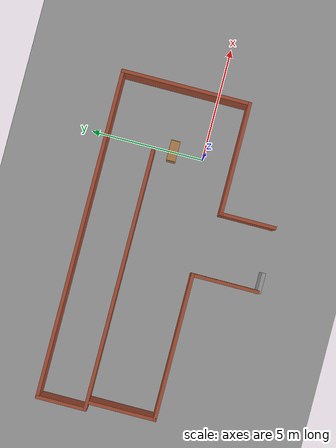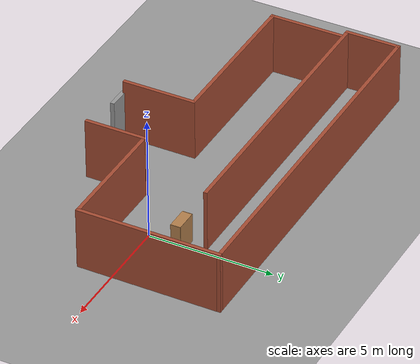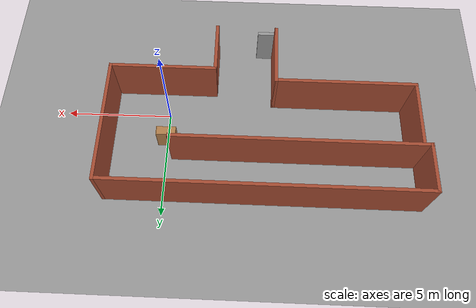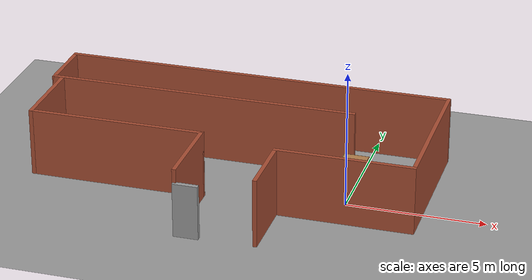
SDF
<sdf version="1.6">
 <world name="default">
  <light name="sun" type="directional">
   <pose>0 0 10 0 -0 0</pose>
   <diffuse>0.8 0.8 0.8 1</diffuse>
   <specular>0.2 0.2 0.2 1</specular>
   <attenuation>
    <range>1000</range>
    <constant>0.9</constant>
    <linear>0.01</linear>
    <quadratic>0.001</quadratic>
   </attenuation>
   <direction>0.5 0.1 -0.9</direction>
  </light>
  <scene><ambient>0.4 0.4 0.4 1</ambient><background>0.7 0.7 0.7 1</background><shadows>1</shadows></scene>
  <physics name="default_physics" default="0" type="ode">
   <max_step_size>0.01</max_step_size>
   <real_time_factor>1</real_time_factor>
   <real_time_update_rate>100</real_time_update_rate>
  </physics>
  <model name="bookshelf">
   <static>1</static>
   <link name="link">
    <inertial><mass>1</mass></inertial>
    <collision name="back">
     <pose>0 0.005 0.6 0 -0 0</pose>
     <geometry><box><size>0.9 0.01 1.2</size></box></geometry>
    </collision>
    <visual name="visual1">
     <pose>0 0.005 0.6 0 -0 0</pose>
     <geometry><box><size>0.9 0.01 1.2</size></box></geometry>
     <material>
      <script><uri>file://media/materials/scripts/gazebo.material</uri><name>Gazebo/Wood</name></script>
     </material>
    </visual>
    <collision name="left_side">
     <pose>0.45 -0.195 0.6 0 -0 0</pose>
     <geometry><box><size>0.02 0.4 1.2</size></box></geometry>
    </collision>
    <visual name="visual2">
     <pose>0.45 -0.195 0.6 0 -0 0</pose>
     <geometry><box><size>0.02 0.4 1.2</size></box></geometry>
     <material>
      <script><uri>file://media/materials/scripts/gazebo.material</uri><name>Gazebo/Wood</name></script>
     </material>
    </visual>
    <collision name="right_side">
     <pose>-0.45 -0.195 0.6 0 -0 0</pose>
     <geometry><box><size>0.02 0.4 1.2</size></box></geometry>
    </collision>
    <visual name="visual3">
     <pose>-0.45 -0.195 0.6 0 -0 0</pose>
     <geometry><box><size>0.02 0.4 1.2</size></box></geometry>
     <material>
      <script><uri>file://media/materials/scripts/gazebo.material</uri><name>Gazebo/Wood</name></script>
     </material>
    </visual>
    <collision name="bottom">
     <pose>0 -0.195 0.03 0 -0 0</pose>
     <geometry><box><size>0.88 0.4 0.06</size></box></geometry>
    </collision>
    <visual name="visual4">
     <pose>0 -0.195 0.03 0 -0 0</pose>
     <geometry><box><size>0.88 0.4 0.06</size></box></geometry>
     <material>
      <script><uri>file://media/materials/scripts/gazebo.material</uri><name>Gazebo/Wood</name></script>
     </material>
    </visual>
    <collision name="top">
     <pose>0 -0.195 1.19 0 -0 0</pose>
     <geometry><box><size>0.88 0.4 0.02</size></box></geometry>
    </collision>
    <visual name="visual5">
     <pose>0 -0.195 1.19 0 -0 0</pose>
     <geometry><box><size>0.88 0.4 0.02</size></box></geometry>
     <material>
      <script><uri>file://media/materials/scripts/gazebo.material</uri><name>Gazebo/Wood</name></script>
     </material>
    </visual>
    <collision name="low_shelf">
     <pose>0 -0.195 0.43 0 -0 0</pose>
     <geometry><box><size>0.88 0.4 0.02</size></box></geometry>
    </collision>
    <visual name="visual6">
     <pose>0 -0.195 0.43 0 -0 0</pose>
     <geometry><box><size>0.88 0.4 0.02</size></box></geometry>
     <material>
      <script><uri>file://media/materials/scripts/gazebo.material</uri><name>Gazebo/Wood</name></script>
     </material>
    </visual>
    <collision name="high_shelf">
     <pose>0 -0.195 0.8 0 -0 0</pose>
     <geometry><box><size>0.88 0.4 0.02</size></box></geometry>
    </collision>
    <visual name="visual7">
     <pose>0 -0.195 0.8 0 -0 0</pose>
     <geometry><box><size>0.88 0.4 0.02</size></box></geometry>
     <material>
      <script><uri>file://media/materials/scripts/gazebo.material</uri><name>Gazebo/Wood</name></script>
     </material>
    </visual>
    <velocity_decay><linear>0</linear><angular>0</angular></velocity_decay>
   </link>
   <pose>0 1.53026 0 0 -0 0</pose>
  </model>
  <model name="ground_plane_0">
   <static>1</static>
   <link name="link">
    <collision name="collision">
     <geometry><plane><normal>0 0 1</normal><size>100 100</size></plane></geometry>
     <surface><friction><ode><mu>100</mu><mu2>50</mu2></ode></friction></surface>
    </collision>
    <visual name="visual">
     <cast_shadows>0</cast_shadows>
     <geometry><plane><normal>0 0 1</normal><size>100 100</size></plane></geometry>
     <material>
      <script><uri>file://media/materials/scripts/gazebo.material</uri><name>Gazebo/Grey</name></script>
     </material>
    </visual>
    <velocity_decay><linear>0</linear><angular>0</angular></velocity_decay>
   </link>
   <pose>0.497681 0 0 0 -0 0</pose>
  </model>
  <gravity>0 0 -9.8</gravity>
  <magnetic_field>6e-06 2.3e-05 -4.2e-05</magnetic_field>
  <atmosphere type="adiabatic"/>
  <spherical_coordinates>
   <surface_model>EARTH_WGS84</surface_model>
   <latitude_deg>0</latitude_deg>
   <longitude_deg>0</longitude_deg>
   <elevation>0</elevation>
   <heading_deg>0</heading_deg>
  </spherical_coordinates>
  <model name="indoors">
   <pose>-4.49165 0.297458 0 0 -0 0</pose>
   <link name="Door_0">
    <collision name="Door_0_Collision">
     <geometry><box><size>0.9 0.17 2</size></box></geometry>
     <pose>0 0 1 0 -0 0</pose>
    </collision>
    <visual name="Door_0_Visual">
     <pose>0 0 1 0 -0 0</pose>
     <geometry><box><size>0.9 0.17 2</size></box></geometry>
     <material>
      <script><uri>file://media/materials/scripts/gazebo.material</uri><name>Gazebo/Grey</name></script>
     </material>
    </visual>
    <pose>-0.094402 -4.05069 0 0 -0 0</pose>
   </link>
   <link name="Wall_0">
    <collision name="Wall_0_Collision">
     <geometry><box><size>5 0.15 2.5</size></box></geometry>
     <pose>0 0 1.25 0 -0 0</pose>
    </collision>
    <visual name="Wall_0_Visual">
     <pose>0 0 1.25 0 -0 0</pose>
     <geometry><box><size>5 0.15 2.5</size></box></geometry>
     <material>
      <script><uri>file://media/materials/scripts/gazebo.material</uri><name>Gazebo/Bricks</name></script>
      <ambient>1 1 1 1</ambient>
     </material>
    </visual>
    <pose>4.75 -1.625 0 0 -0 0</pose>
   </link>
   <link name="Wall_10">
    <collision name="Wall_10_Collision">
     <geometry><box><size>3 0.15 2.5</size></box></geometry>
     <pose>0 0 1.25 0 -0 0</pose>
    </collision>
    <visual name="Wall_10_Visual">
     <pose>0 0 1.25 0 -0 0</pose>
     <geometry><box><size>3 0.15 2.5</size></box></geometry>
     <material>
      <script><uri>file://media/materials/scripts/gazebo.material</uri><name>Gazebo/Bricks</name></script>
      <ambient>1 1 1 1</ambient>
     </material>
    </visual>
    <pose>-0.498725 -2.53388 0 0 0 -1.5708</pose>
   </link>
   <link name="Wall_12">
    <collision name="Wall_12_Collision">
     <geometry><box><size>2.5 0.15 2.5</size></box></geometry>
     <pose>0 0 1.25 0 -0 0</pose>
    </collision>
    <visual name="Wall_12_Visual">
     <pose>0 0 1.25 0 -0 0</pose>
     <geometry><box><size>2.5 0.15 2.5</size></box></geometry>
     <material>
      <script><uri>file://media/materials/scripts/gazebo.material</uri><name>Gazebo/Bricks</name></script>
      <ambient>1 1 1 1</ambient>
     </material>
    </visual>
    <pose>2.325 -2.8 0 0 0 -1.5708</pose>
   </link>
   <link name="Wall_2">
    <collision name="Wall_2_Collision">
     <geometry><box><size>5.75 0.15 2.5</size></box></geometry>
     <pose>0 0 1.25 0 -0 0</pose>
    </collision>
    <visual name="Wall_2_Visual">
     <pose>0 0 1.25 0 -0 0</pose>
     <geometry><box><size>5.75 0.15 2.5</size></box></geometry>
     <material>
      <script><uri>file://media/materials/scripts/gazebo.material</uri><name>Gazebo/Bricks</name></script>
      <ambient>1 1 1 1</ambient>
     </material>
    </visual>
    <pose>7.175 1.175 0 0 -0 1.5708</pose>
   </link>
   <link name="Wall_3">
    <collision name="Wall_3_Collision">
     <geometry><box><size>14.5 0.15 2.5</size></box></geometry>
     <pose>0 0 1.25 0 -0 0</pose>
    </collision>
    <visual name="Wall_3_Visual">
     <pose>0 0 1.25 0 -0 0</pose>
     <geometry><box><size>14.5 0.15 2.5</size></box></geometry>
     <material>
      <script><uri>file://media/materials/scripts/gazebo.material</uri><name>Gazebo/Bricks</name></script>
      <ambient>1 1 1 1</ambient>
     </material>
    </visual>
    <pose>0 3.975 0 0 -0 3.14159</pose>
   </link>
   <link name="Wall_4">
    <collision name="Wall_4_Collision">
     <geometry><box><size>2.25 0.15 2.5</size></box></geometry>
     <pose>0 0 1.25 0 -0 0</pose>
    </collision>
    <visual name="Wall_4_Visual">
     <pose>0 0 1.25 0 -0 0</pose>
     <geometry><box><size>2.25 0.15 2.5</size></box></geometry>
     <material>
      <script><uri>file://media/materials/scripts/gazebo.material</uri><name>Gazebo/Bricks</name></script>
      <ambient>1 1 1 1</ambient>
     </material>
    </visual>
    <pose>-7.175 2.925 0 0 0 -1.5708</pose>
   </link>
   <link name="Wall_5">
    <collision name="Wall_5_Collision">
     <geometry><box><size>11.5 0.15 2.5</size></box></geometry>
     <pose>0 0 1.25 0 -0 0</pose>
    </collision>
    <visual name="Wall_5_Visual">
     <pose>0 0 1.25 0 -0 0</pose>
     <geometry><box><size>11.5 0.15 2.5</size></box></geometry>
     <material>
      <script><uri>file://media/materials/scripts/gazebo.material</uri><name>Gazebo/Bricks</name></script>
      <ambient>1 1 1 1</ambient>
     </material>
    </visual>
    <pose>-1.5 1.875 0 0 -0 0</pose>
   </link>
   <link name="Wall_8">
    <collision name="Wall_8_Collision">
     <geometry><box><size>3 0.15 2.5</size></box></geometry>
     <pose>0 0 1.25 0 -0 0</pose>
    </collision>
    <visual name="Wall_8_Visual">
     <pose>0 0 1.25 0 -0 0</pose>
     <geometry><box><size>3 0.15 2.5</size></box></geometry>
     <material>
      <script><uri>file://media/materials/scripts/gazebo.material</uri><name>Gazebo/Bricks</name></script>
      <ambient>1 1 1 1</ambient>
     </material>
    </visual>
    <pose>-6.84872 0.316119 0 0 0 -1.5708</pose>
   </link>
   <link name="Wall_9">
    <collision name="Wall_9_Collision">
     <geometry><box><size>6.5 0.15 2.5</size></box></geometry>
     <pose>0 0 1.25 0 -0 0</pose>
    </collision>
    <visual name="Wall_9_Visual">
     <pose>0 0 1.25 0 -0 0</pose>
     <geometry><box><size>6.5 0.15 2.5</size></box></geometry>
     <material>
      <script><uri>file://media/materials/scripts/gazebo.material</uri><name>Gazebo/Bricks</name></script>
      <ambient>1 1 1 1</ambient>
     </material>
    </visual>
    <pose>-3.67372 -1.10888 0 0 -0 0</pose>
   </link>
   <static>1</static>
  </model>
 </world>
</sdf>
